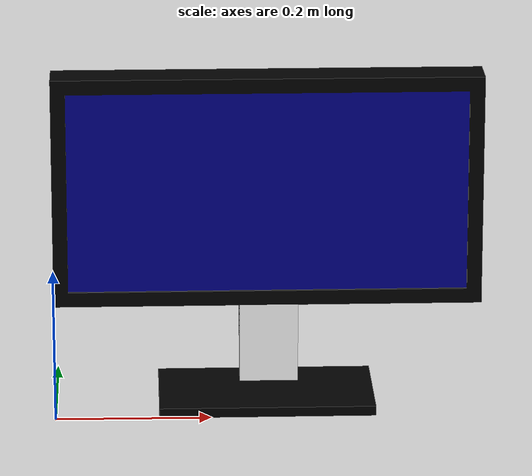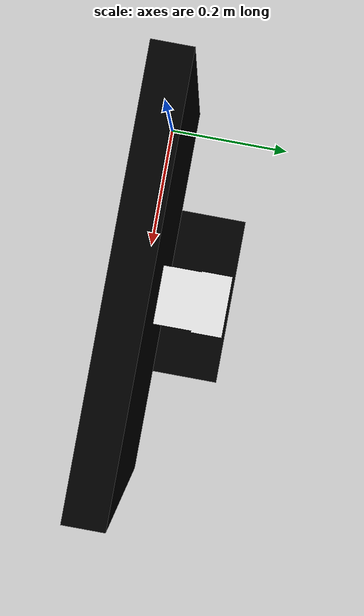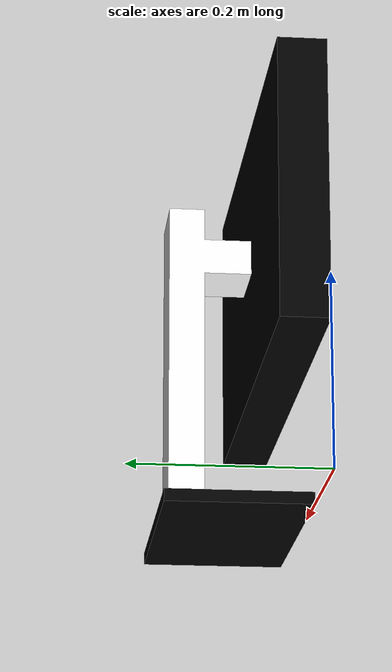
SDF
<?xml version="1.0"?>
<sdf version="1.3">
  <model name="HKU Monitor">
    <static>true</static>
    <link name="link">
      <collision name="collision">
        <geometry>
          <mesh>
           <uri>model://monitor/meshes/monitor.dae</uri>
          </mesh>
        </geometry>
      </collision>
      <visual name="visual">
        <geometry>
          <mesh>
           <uri>model://monitor/meshes/monitor.dae</uri>
          </mesh>
        </geometry>
      </visual>
    </link>
  </model>
</sdf>
